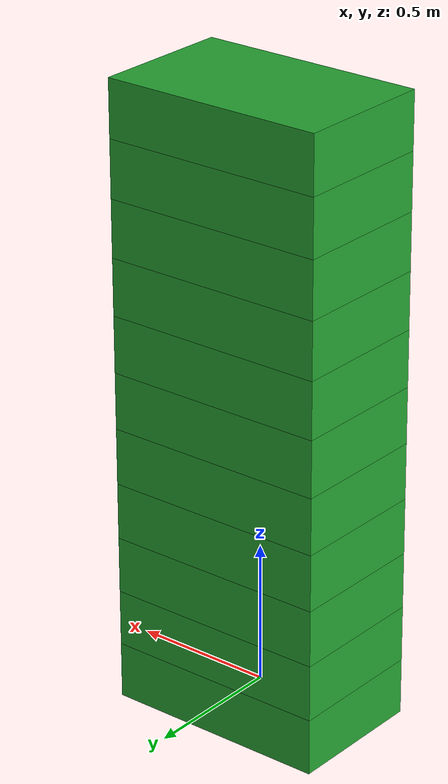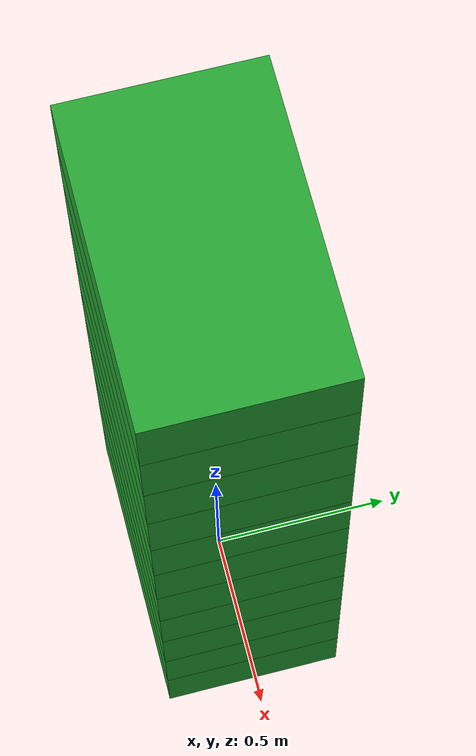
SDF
<?xml version="1.0" encoding="UTF-8"?>
<sdf version='1.4'>
    <model name="baggage_D_x11">
        <model name="baggage_D_0">
            <static>true</static>
            <link name="link">
                <collision name="collision">
                    <geometry>
                    <box>
                        <size>0.8 0.5 0.2</size>
                    </box>
                    </geometry>
                </collision>
                <visual name="visual">
                    <geometry>
                    <box>
                        <size>0.8 0.5 0.2</size>
                    </box>
                    </geometry>
                    <material>
                    <script>
                        <uri>file://media/materials/scripts/gazebo.material</uri>
                        <name>Gazebo/Green</name>
                    </script>
                    </material>
                </visual>
            </link>
            <pose frame=''>0 0 0 0 0 0</pose>
        </model>
        <model name="baggage_D_1">
            <static>true</static>
            <link name="link">
                <collision name="collision">
                    <geometry>
                    <box>
                        <size>0.8 0.5 0.2</size>
                    </box>
                    </geometry>
                </collision>
                <visual name="visual">
                    <geometry>
                    <box>
                        <size>0.8 0.5 0.2</size>
                    </box>
                    </geometry>
                    <material>
                    <script>
                        <uri>file://media/materials/scripts/gazebo.material</uri>
                        <name>Gazebo/Green</name>
                    </script>
                    </material>
                </visual>
            </link>
            <pose frame=''>0 0 0.2 0 0 0</pose>
        </model>
        <model name="baggage_D_2">
            <static>true</static>
            <link name="link">
                <collision name="collision">
                    <geometry>
                    <box>
                        <size>0.8 0.5 0.2</size>
                    </box>
                    </geometry>
                </collision>
                <visual name="visual">
                    <geometry>
                    <box>
                        <size>0.8 0.5 0.2</size>
                    </box>
                    </geometry>
                    <material>
                    <script>
                        <uri>file://media/materials/scripts/gazebo.material</uri>
                        <name>Gazebo/Green</name>
                    </script>
                    </material>
                </visual>
            </link>
            <pose frame=''>0 0 0.4 0 0 0</pose>
        </model>
        <model name="baggage_D_3">
            <static>true</static>
            <link name="link">
                <collision name="collision">
                    <geometry>
                    <box>
                        <size>0.8 0.5 0.2</size>
                    </box>
                    </geometry>
                </collision>
                <visual name="visual">
                    <geometry>
                    <box>
                        <size>0.8 0.5 0.2</size>
                    </box>
                    </geometry>
                    <material>
                    <script>
                        <uri>file://media/materials/scripts/gazebo.material</uri>
                        <name>Gazebo/Green</name>
                    </script>
                    </material>
                </visual>
            </link>
            <pose frame=''>0 0 0.6 0 0 0</pose>
        </model>
        <model name="baggage_D_4">
            <static>true</static>
            <link name="link">
                <collision name="collision">
                    <geometry>
                    <box>
                        <size>0.8 0.5 0.2</size>
                    </box>
                    </geometry>
                </collision>
                <visual name="visual">
                    <geometry>
                    <box>
                        <size>0.8 0.5 0.2</size>
                    </box>
                    </geometry>
                    <material>
                    <script>
                        <uri>file://media/materials/scripts/gazebo.material</uri>
                        <name>Gazebo/Green</name>
                    </script>
                    </material>
                </visual>
            </link>
            <pose frame=''>0 0 0.8 0 0 0</pose>
        </model>
        <model name="baggage_D_5">
            <static>true</static>
            <link name="link">
                <collision name="collision">
                    <geometry>
                    <box>
                        <size>0.8 0.5 0.2</size>
                    </box>
                    </geometry>
                </collision>
                <visual name="visual">
                    <geometry>
                    <box>
                        <size>0.8 0.5 0.2</size>
                    </box>
                    </geometry>
                    <material>
                    <script>
                        <uri>file://media/materials/scripts/gazebo.material</uri>
                        <name>Gazebo/Green</name>
                    </script>
                    </material>
                </visual>
            </link>
            <pose frame=''>0 0 1.0 0 0 0</pose>
        </model>
        <model name="baggage_D_6">
            <static>true</static>
            <link name="link">
                <collision name="collision">
                    <geometry>
                    <box>
                        <size>0.8 0.5 0.2</size>
                    </box>
                    </geometry>
                </collision>
                <visual name="visual">
                    <geometry>
                    <box>
                        <size>0.8 0.5 0.2</size>
                    </box>
                    </geometry>
                    <material>
                    <script>
                        <uri>file://media/materials/scripts/gazebo.material</uri>
                        <name>Gazebo/Green</name>
                    </script>
                    </material>
                </visual>
            </link>
            <pose frame=''>0 0 1.2 0 0 0</pose>
        </model>
        <model name="baggage_D_7">
            <static>true</static>
            <link name="link">
                <collision name="collision">
                    <geometry>
                    <box>
                        <size>0.8 0.5 0.2</size>
                    </box>
                    </geometry>
                </collision>
                <visual name="visual">
                    <geometry>
                    <box>
                        <size>0.8 0.5 0.2</size>
                    </box>
                    </geometry>
                    <material>
                    <script>
                        <uri>file://media/materials/scripts/gazebo.material</uri>
                        <name>Gazebo/Green</name>
                    </script>
                    </material>
                </visual>
            </link>
            <pose frame=''>0 0 1.4 0 0 0</pose>
        </model>
        <model name="baggage_D_8">
            <static>true</static>
            <link name="link">
                <collision name="collision">
                    <geometry>
                    <box>
                        <size>0.8 0.5 0.2</size>
                    </box>
                    </geometry>
                </collision>
                <visual name="visual">
                    <geometry>
                    <box>
                        <size>0.8 0.5 0.2</size>
                    </box>
                    </geometry>
                    <material>
                    <script>
                        <uri>file://media/materials/scripts/gazebo.material</uri>
                        <name>Gazebo/Green</name>
                    </script>
                    </material>
                </visual>
            </link>
            <pose frame=''>0 0 1.6 0 0 0</pose>
        </model>
        <model name="baggage_D_9">
            <static>true</static>
            <link name="link">
                <collision name="collision">
                    <geometry>
                    <box>
                        <size>0.8 0.5 0.2</size>
                    </box>
                    </geometry>
                </collision>
                <visual name="visual">
                    <geometry>
                    <box>
                        <size>0.8 0.5 0.2</size>
                    </box>
                    </geometry>
                    <material>
                    <script>
                        <uri>file://media/materials/scripts/gazebo.material</uri>
                        <name>Gazebo/Green</name>
                    </script>
                    </material>
                </visual>
            </link>
            <pose frame=''>0 0 1.8 0 0 0</pose>
        </model>
        <model name="baggage_D_10">
            <static>true</static>
            <link name="link">
                <collision name="collision">
                    <geometry>
                    <box>
                        <size>0.8 0.5 0.2</size>
                    </box>
                    </geometry>
                </collision>
                <visual name="visual">
                    <geometry>
                    <box>
                        <size>0.8 0.5 0.2</size>
                    </box>
                    </geometry>
                    <material>
                    <script>
                        <uri>file://media/materials/scripts/gazebo.material</uri>
                        <name>Gazebo/Green</name>
                    </script>
                    </material>
                </visual>
            </link>
            <pose frame=''>0 0 2.0 0 0 0</pose>
        </model>
    </model>
</sdf>
